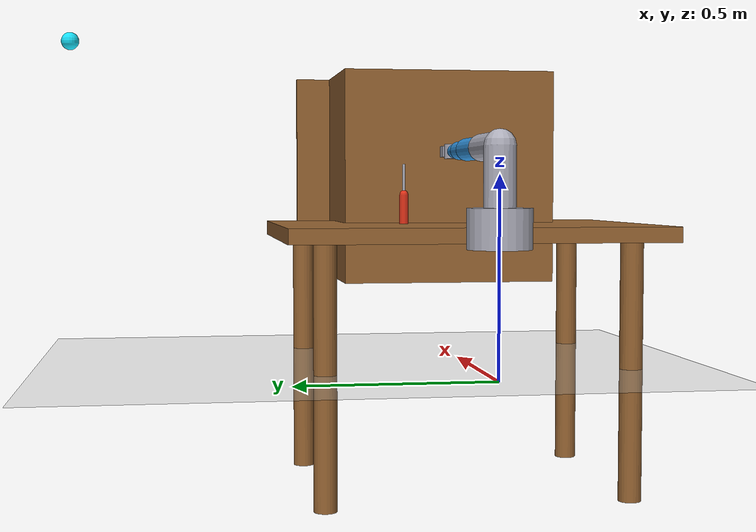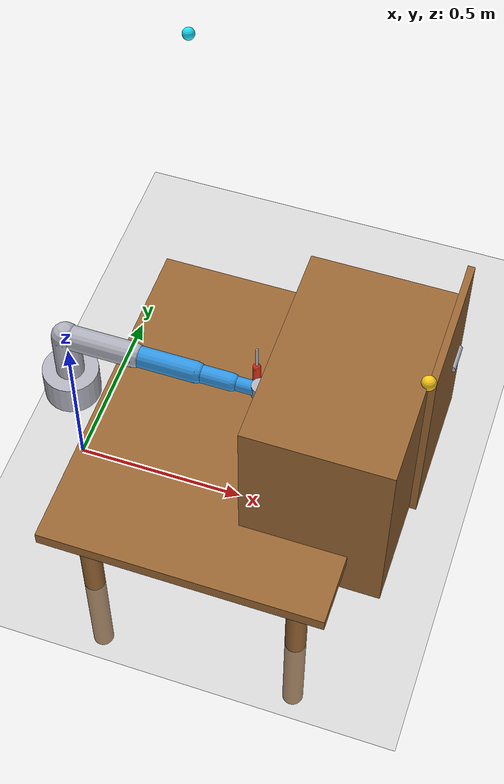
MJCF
<mujoco model="demo_scene">
  <compiler angle="radian" meshdir="../robot/meshes"/>

  <option timestep="0.002" gravity="0 0 -9.81" integrator="implicitfast"/>

  <default>
    <joint armature="0.01" damping="0.5"/>
    <geom condim="4" friction="1 0.5 0.01"/>
    <motor ctrllimited="true" ctrlrange="-1 1"/>
  </default>

  <asset>
    <texture type="skybox" builtin="gradient" rgb1="0.6 0.7 0.8" rgb2="0.2 0.2 0.4" width="512" height="512"/>
    <texture name="texplane" type="2d" builtin="checker" rgb1="0.8 0.8 0.8" rgb2="0.6 0.6 0.6" width="512" height="512"/>
    <material name="matplane" texture="texplane" texrepeat="5 5" reflectance="0.1"/>
    <material name="metal" rgba="0.7 0.7 0.75 1" specular="0.5" shininess="0.3"/>
    <material name="plastic" rgba="0.2 0.6 0.9 1"/>
    <material name="wood" rgba="0.6 0.4 0.2 1"/>
    <material name="red" rgba="0.9 0.2 0.1 1"/>
  </asset>

  <worldbody>
    <!-- Ground plane -->
    <geom name="floor" type="plane" size="2 2 0.1" material="matplane" pos="0 0 0"/>

    <!-- Light -->
    <light directional="true" diffuse="0.8 0.8 0.8" specular="0.3 0.3 0.3" pos="0 0 4" dir="0 0 -1"/>

    <!-- Table -->
    <body name="table" pos="0.5 0 0.35">
      <geom name="table_top" type="box" size="0.4 0.5 0.02" material="wood" pos="0 0 0"/>
      <geom name="leg1" type="cylinder" size="0.03 0.35" material="wood" pos="0.3 0.4 -0.35"/>
      <geom name="leg2" type="cylinder" size="0.03 0.35" material="wood" pos="-0.3 0.4 -0.35"/>
      <geom name="leg3" type="cylinder" size="0.03 0.35" material="wood" pos="0.3 -0.4 -0.35"/>
      <geom name="leg4" type="cylinder" size="0.03 0.35" material="wood" pos="-0.3 -0.4 -0.35"/>
    </body>

    <!-- Robot base -->
    <body name="robot_base" pos="0 0 0.37">
      <geom name="base" type="cylinder" size="0.08 0.05" material="metal"/>

      <!-- Joint 1: Shoulder Yaw -->
      <body name="link1" pos="0 0 0.05">
        <joint name="joint1" type="hinge" axis="0 0 1" range="-3.14 3.14"/>
        <geom name="link1_geom" type="capsule" fromto="0 0 0 0 0 0.15" size="0.04" material="metal"/>

        <!-- Joint 2: Shoulder Pitch -->
        <body name="link2" pos="0 0 0.15">
          <joint name="joint2" type="hinge" axis="0 1 0" range="-1.57 1.57"/>
          <geom name="link2_geom" type="capsule" fromto="0 0 0 0.2 0 0" size="0.035" material="metal"/>

          <!-- Joint 3: Elbow Pitch -->
          <body name="link3" pos="0.2 0 0">
            <joint name="joint3" type="hinge" axis="0 1 0" range="-2.35 2.35"/>
            <geom name="link3_geom" type="capsule" fromto="0 0 0 0.18 0 0" size="0.03" material="plastic"/>

            <!-- Joint 4: Wrist Roll -->
            <body name="link4" pos="0.18 0 0">
              <joint name="joint4" type="hinge" axis="1 0 0" range="-3.14 3.14"/>
              <geom name="link4_geom" type="capsule" fromto="0 0 0 0.1 0 0" size="0.025" material="plastic"/>

              <!-- Joint 5: Wrist Pitch -->
              <body name="link5" pos="0.1 0 0">
                <joint name="joint5" type="hinge" axis="0 1 0" range="-1.57 1.57"/>
                <geom name="link5_geom" type="capsule" fromto="0 0 0 0.08 0 0" size="0.02" material="plastic"/>

                <!-- Joint 6: Wrist Roll (tool) -->
                <body name="link6" pos="0.08 0 0">
                  <joint name="joint6" type="hinge" axis="1 0 0" range="-3.14 3.14"/>
                  <geom name="link6_geom" type="cylinder" size="0.025 0.02" material="metal"/>

                  <!-- Gripper base -->
                  <body name="gripper_base" pos="0.02 0 0">
                    <geom name="gripper_base_geom" type="box" size="0.02 0.03 0.015" material="metal"/>

                    <!-- Left finger -->
                    <body name="finger_left" pos="0.02 0.015 0">
                      <joint name="finger_left_joint" type="slide" axis="0 1 0" range="0 0.04"/>
                      <geom name="finger_left_geom" type="box" size="0.03 0.005 0.01" material="metal" pos="0.01 0 0"/>
                    </body>

                    <!-- Right finger -->
                    <body name="finger_right" pos="0.02 -0.015 0">
                      <joint name="finger_right_joint" type="slide" axis="0 -1 0" range="0 0.04"/>
                      <geom name="finger_right_geom" type="box" size="0.03 0.005 0.01" material="metal" pos="0.01 0 0"/>
                    </body>

                    <!-- EE Site (End Effector) -->
                    <site name="ee_site" pos="0.04 0 0" size="0.005" rgba="1 0 0 1"/>
                  </body>
                </body>
              </body>
            </body>
          </body>
        </body>
      </body>
    </body>

    <!-- Cabinet -->
    <body name="cabinet" pos="0.8 0 0.5">
      <geom name="cabinet_body" type="box" size="0.2 0.3 0.3" material="wood" pos="0 0 0"/>
      <!-- Cabinet door -->
      <body name="cabinet_door" pos="0.2 0.2 0">
        <joint name="door_hinge" type="hinge" axis="0 0 1" range="0 1.57" damping="0.1"/>
        <geom name="door_geom" type="box" size="0.01 0.2 0.3" material="wood" pos="0.01 0 0"/>
        <!-- Door handle -->
        <geom name="handle" type="cylinder" size="0.01 0.04" material="metal" pos="0.02 0.12 0" euler="1.5708 0 0"/>
      </body>
    </body>

    <!-- Screwdriver (for pick_screwdriver task) -->
    <body name="screwdriver" pos="0.5 0.15 0.39">
      <joint name="screwdriver_free" type="free"/>
      <geom name="screwdriver_handle" type="capsule" fromto="0 0 -0.06 0 0 0.06" size="0.012" material="red"/>
      <geom name="screwdriver_shaft" type="capsule" fromto="0 0 0.06 0 0 0.14" size="0.004" material="metal"/>
    </body>

    <!-- Named cameras -->
    <camera name="camera_front" pos="1.0 0 0.8" xyaxes="0 1 0 -0.5 0 0.866" fovy="60"/>
    <camera name="camera_side" pos="0 1.0 0.8" xyaxes="-1 0 0 0 -0.5 0.866" fovy="60"/>
    <camera name="camera_top" pos="0.5 0 1.5" xyaxes="0 1 0 -1 0 0" fovy="60"/>

    <!-- Camera position markers for the main view -->
    <body name="camera_front_marker" pos="1.0 0 0.8">
      <geom name="camera_front_marker_geom" type="sphere" size="0.02" rgba="1 0.8 0.1 1" contype="0" conaffinity="0"/>
    </body>
    <body name="camera_side_marker" pos="0 1.0 0.8">
      <geom name="camera_side_marker_geom" type="sphere" size="0.02" rgba="0.1 0.9 1 1" contype="0" conaffinity="0"/>
    </body>
  </worldbody>

  <actuator>
    <motor name="act_joint1" joint="joint1" gear="50"/>
    <motor name="act_joint2" joint="joint2" gear="50"/>
    <motor name="act_joint3" joint="joint3" gear="30"/>
    <motor name="act_joint4" joint="joint4" gear="20"/>
    <motor name="act_joint5" joint="joint5" gear="20"/>
    <motor name="act_joint6" joint="joint6" gear="10"/>
    <motor name="act_finger_left" joint="finger_left_joint" gear="10"/>
    <motor name="act_finger_right" joint="finger_right_joint" gear="10"/>
    <position name="pos_door" joint="door_hinge" kp="20"/>
  </actuator>
</mujoco>
